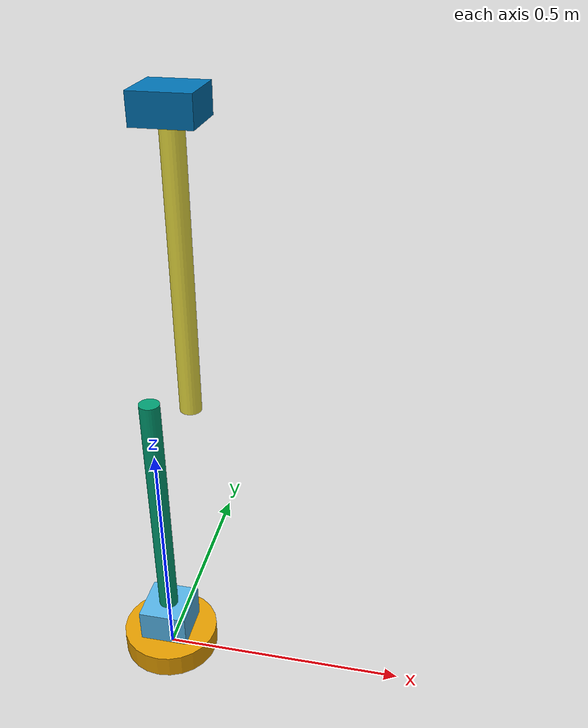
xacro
<?xml version="1.0"?>
<robot xmlns:xacro="http://www.ros.org/wiki/xacro" name="robot_arm">

  <xacro:arg name="use_ros2_control" default="true"/>

  <!-- Arm geometry (from DCR-Arm-2026 reference design) -->
  <link name="base_link">
    <visual>
      <origin xyz="0 0 0.025" rpy="0 0 0"/>
      <geometry>
        <cylinder length="0.050" radius="0.1"/>
      </geometry>
    </visual>
  </link>

  <joint name="base_joint" type="revolute">
    <parent link="base_link"/>
    <child link="base_rot"/>
    <origin xyz="0 0 0.05" rpy="0 0 0"/>
    <axis xyz="0 0 -1"/>
    <limit effort="50.0" velocity="1.0" lower="-6.28" upper="6.28"/>
  </joint>

  <link name="base_rot">
    <visual>
      <origin xyz="0 0 0.035" rpy="0 0 0"/>
      <geometry>
        <box size="0.1 0.1 0.07"/>
      </geometry>
    </visual>
  </link>

  <joint name="shoulder_joint" type="revolute">
    <parent link="base_rot"/>
    <child link="arm1"/>
    <origin xyz="0 0 0.07" rpy="0 0 0"/>
    <axis xyz="1 0 0"/>
    <limit effort="50.0" velocity="1.0" lower="-1.57" upper="1.57"/>
  </joint>

  <link name="arm1">
    <visual>
      <origin xyz="0 0 0.25" rpy="0 0 0"/>
      <geometry>
        <cylinder length="0.5" radius="0.02"/>
      </geometry>
    </visual>
  </link>

  <joint name="elbow_joint" type="revolute">
    <parent link="arm1"/>
    <child link="arm2"/>
    <origin xyz="0.08 0 0.5" rpy="0 0 0"/>
    <axis xyz="1 0 0"/>
    <limit effort="50.0" velocity="1.0" lower="-3.14" upper="3.14"/>
  </joint>

  <link name="arm2">
    <visual>
      <origin xyz="0 0 0.25" rpy="0 0 0"/>
      <geometry>
        <cylinder length="0.5" radius="0.02"/>
      </geometry>
    </visual>
  </link>

  <joint name="ee_joint" type="fixed">
    <parent link="arm2"/>
    <child link="ee_link"/>
    <origin xyz="0 0 0.5" rpy="0 0 0"/>
  </joint>

  <link name="ee_link">
    <visual>
      <origin xyz="0 0 0.025" rpy="0 0 0"/>
      <geometry>
        <box size="0.1 0.1 0.05"/>
      </geometry>
    </visual>
  </link>

  <!-- ros2_control hardware interface block (disabled for visualization-only launches) -->
  <xacro:if value="$(arg use_ros2_control)">
    <ros2_control name="ArmSystem" type="system">

      <!-- In simulation: use mock hardware (no real motors needed) -->
      <hardware>
        <plugin>mock_components/GenericSystem</plugin>
      </hardware>

      <joint name="base_joint">
        <command_interface name="position"/>
        <state_interface name="position">
          <param name="initial_value">0.0</param>
        </state_interface>
        <state_interface name="velocity"/>
      </joint>

      <joint name="shoulder_joint">
        <command_interface name="position"/>
        <state_interface name="position">
          <param name="initial_value">0.0</param>
        </state_interface>
        <state_interface name="velocity"/>
      </joint>

      <joint name="elbow_joint">
        <command_interface name="position"/>
        <state_interface name="position">
          <param name="initial_value">0.0</param>
        </state_interface>
        <state_interface name="velocity"/>
      </joint>

    </ros2_control>
  </xacro:if>

</robot>
